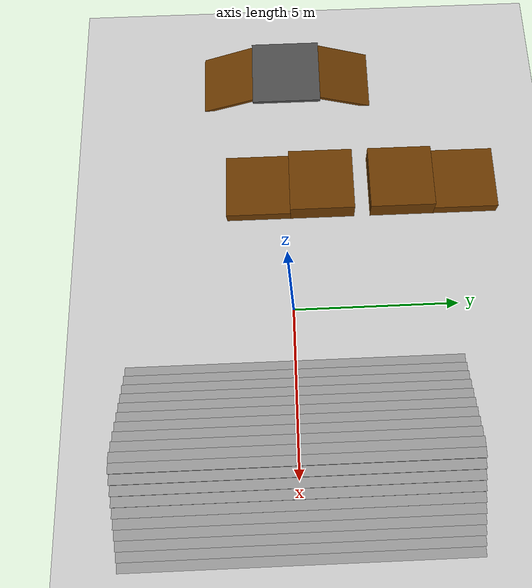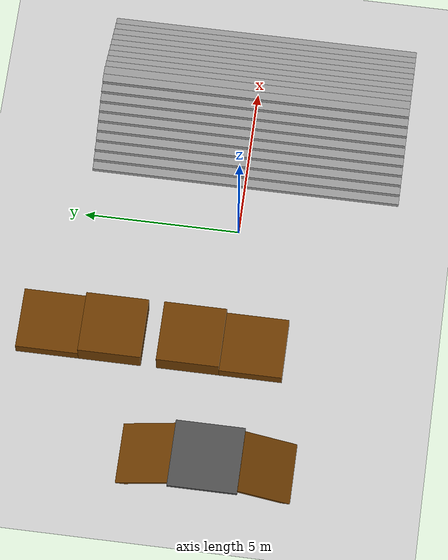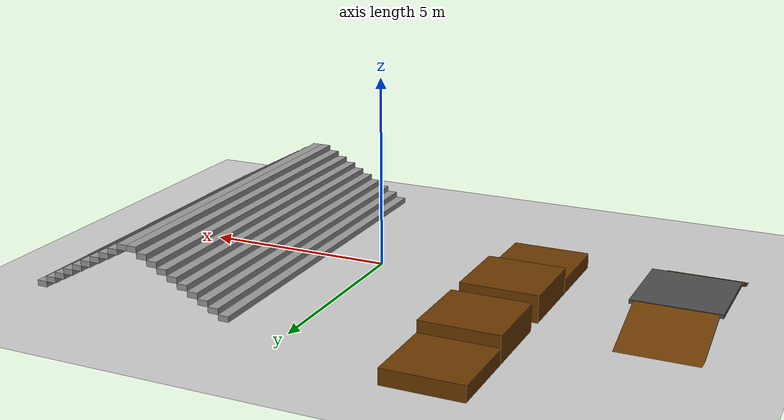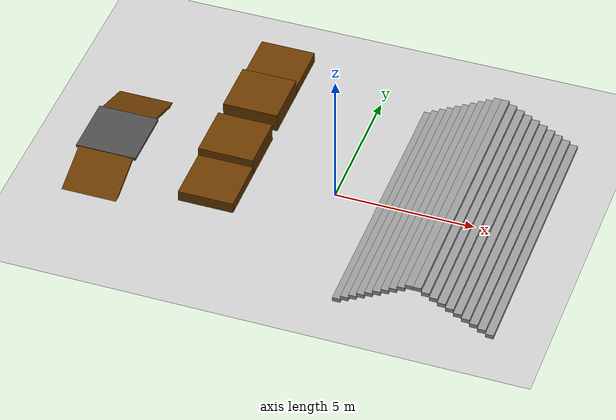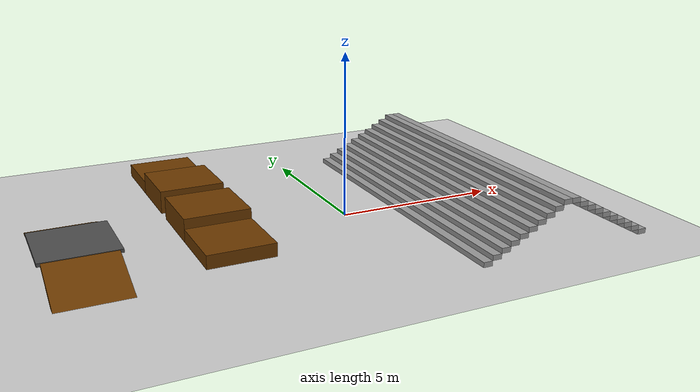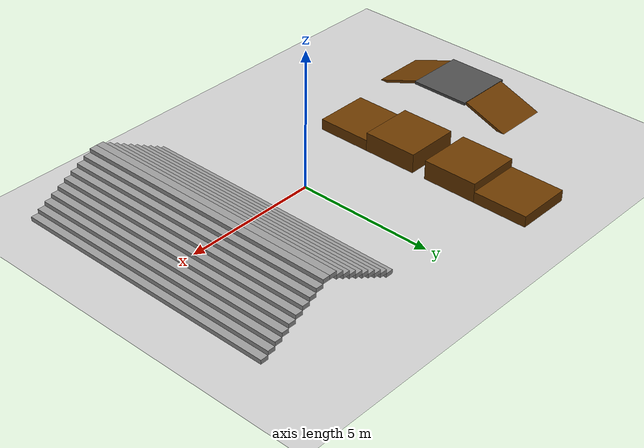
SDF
<?xml version="1.0" ?>
<sdf version="1.5">
    <world name="default">

        <physics type="ode">
            <max_step_size>0.0005</max_step_size>
            <real_time_factor>1</real_time_factor>
            <real_time_update_rate>2000</real_time_update_rate>
            <gravity>0 0 -9.81</gravity>
            <ode>
                <solver>
                    <type>quick</type>
                    <iters>50</iters>
                    <sor>1.3</sor>
                </solver>
                <constraints>
                    <cfm>0.0</cfm>
                    <erp>0.2</erp>
                    <contact_max_correcting_vel>10.0</contact_max_correcting_vel>
                    <contact_surface_layer>0.001</contact_surface_layer>
                </constraints>
            </ode>
        </physics>

        <scene>
        <sky>
            <clouds>
                <speed>12</speed>
            </clouds>
        </sky>
        </scene>
        <!-- A global light source -->
        <include>
            <uri>model://sun</uri>
        </include>
        <!-- A ground plane -->
        <include>
            <uri>model://ground_plane</uri>
        </include>
        <!-- environment blocks, obstacles or stairs -->
        <model name="static_environment">
        <static>true</static>
            <!-- 上斜坡：从后往前爬 -->
            <link name="slope_up">
            <pose>-8 -2.0 0.2 0.35 0 0</pose>
            <collision name="slope_up_collision">
                <geometry>
                <box>
                    <size>2 2 0.1</size>  <!-- 长 Y方向 / 宽 X方向 -->
                </box>
                </geometry>
                <!-- ✨摩擦加在这里 ✨-->
                <surface>
                <friction>
                    <ode>
                    <mu>1.0</mu>   <!-- 越大越防滑 -->
                    <mu2>1.0</mu2>
                    </ode>
                </friction>
                </surface>
            </collision>
            <visual name="slope_up_visual">
                <geometry>
                <box>
                    <size>2 2 0.1</size>
                </box>
                </geometry>
                <material>
                <diffuse>0.421 0.225 0.0 1.0</diffuse>
                </material>
            </visual>
            </link>

            <!-- 平台 -->
            <link name="platform">
            <pose>-8 0.0 0.55 0 0 0</pose>
            <collision name="platform_collision">
                <geometry>
                <box>
                    <size>2.2 2.2 0.1</size>
                </box>
                </geometry>
            </collision>
            <visual name="platform_visual">
                <geometry>
                <box>
                    <size>2.2 2.2 0.1</size>
                </box>
                </geometry>
                <material>
                <diffuse>0.3 0.3 0.3 1.0</diffuse>
                </material>
            </visual>
            </link>

            <!-- 下斜坡：从平台走下去 -->
            <link name="slope_down">
            <pose>-8 2.0 0.2 -0.35 0 0</pose>  <!-- -30° 反向坡 -->
            <collision name="slope_down_collision">
                <geometry>
                <box>
                    <size>2 2 0.1</size>
                </box>
                </geometry>
            </collision>
            <visual name="slope_down_visual">
                <geometry>
                <box>
                    <size>2 2 0.1</size>
                </box>
                </geometry>
                <material>
                <diffuse>0.421 0.225 0.0 1.0</diffuse>
                </material>
            </visual>
            </link>

            <link name="static_box_0">
                <pose>-4 -1.0 0.2 0 0 0</pose>
                <collision name="static_box_collision">
                    <geometry>
                        <box>
                            <size>2 2 0.4</size>
                        </box>
                    </geometry>
                </collision>
                <visual name="static_box_visual">
                    <geometry>
                        <box>
                            <size>2 2 0.4</size>
                        </box>
                    </geometry>
                    <material>
                        <ambient>0.2 0.2 0.2 1.0</ambient>
                        <diffuse>.421 0.225 0.0 1.0</diffuse>
                    </material>
                </visual>
            </link>
            <link name="static_box_1">
                <pose>-4 1.0 0.35 0 0 0</pose>
                <collision name="static_box_collision">
                    <geometry>
                        <box>
                            <size>2 2 0.7</size>
                        </box>
                    </geometry>
                </collision>
                <visual name="static_box_visual">
                    <geometry>
                        <box>
                            <size>2 2 0.7</size>
                        </box>
                    </geometry>
                    <material>
                        <ambient>0.2 0.2 0.2 1.0</ambient>
                        <diffuse>.421 0.225 0.0 1.0</diffuse>
                    </material>
                </visual>
            </link>
            <link name="static_box_2">
                <pose>-4 3.5 0.35 0 0 0</pose>
                <collision name="static_box_collision_1">
                    <geometry>
                        <box>
                            <size>2 2 0.7</size>
                        </box>
                    </geometry>
                </collision>
                <visual name="static_box_visual_1">
                    <geometry>
                        <box>
                            <size>2 2 0.7</size>
                        </box>
                    </geometry>
                    <material>
                        <ambient>0.2 0.2 0.2 1.0</ambient>
                        <diffuse>.421 0.225 0.0 1.0</diffuse>
                    </material>
                </visual>
            </link>
            <link name="static_box_3">
                <pose>-4 5.5 0.2 0 0 0</pose>
                <collision name="static_box_collision_1">
                    <geometry>
                        <box>
                            <size>2 2 0.4</size>
                        </box>
                    </geometry>
                </collision>
                <visual name="static_box_visual_1">
                    <geometry>
                        <box>
                            <size>2 2 0.4</size>
                        </box>
                    </geometry>
                    <material>
                        <ambient>0.2 0.2 0.2 1.0</ambient>
                        <diffuse>.421 0.225 0.0 1.0</diffuse>
                    </material>
                </visual>
            </link>

            <link name='Stairs'>
                <pose>3 0 0 0 0 0</pose>
                <scale>1 1 1</scale>
                <visual name='Stairs_Visual_0'>
                    <pose>-1.26 -0 0.075 0 -0 1.5708</pose>
                    <geometry>
                    <box>
                        <size>10 0.28 0.15</size>
                    </box>
                    </geometry>
                    <material>
                    <script>
                        <uri>file://media/materials/scripts/gazebo.material</uri>
                        <name>Gazebo/Grey</name>
                    </script>
                    <ambient>1 1 1 1</ambient>
                    </material>
                    <meta>
                    <layer>0</layer>
                    </meta>
                </visual>
                <collision name='Stairs_Collision_0'>
                    <geometry>
                    <box>
                        <size>10 0.28 0.15</size>
                    </box>
                    </geometry>
                    <pose>-1.26 -0 0.075 0 -0 1.5708</pose>
                </collision>
                <visual name='Stairs_Visual_1'>
                    <pose>-0.98 -0 0.225 0 -0 1.5708</pose>
                    <geometry>
                    <box>
                        <size>10 0.28 0.15</size>
                    </box>
                    </geometry>
                    <material>
                    <script>
                        <uri>file://media/materials/scripts/gazebo.material</uri>
                        <name>Gazebo/Grey</name>
                    </script>
                    <ambient>1 1 1 1</ambient>
                    </material>
                    <meta>
                    <layer>0</layer>
                    </meta>
                </visual>
                <collision name='Stairs_Collision_1'>
                    <geometry>
                    <box>
                        <size>10 0.28 0.15</size>
                    </box>
                    </geometry>
                    <pose>-0.98 -0 0.225 0 -0 1.5708</pose>
                </collision>
                <visual name='Stairs_Visual_2'>
                    <pose>-0.7 -0 0.375 0 -0 1.5708</pose>
                    <geometry>
                    <box>
                        <size>10 0.28 0.15</size>
                    </box>
                    </geometry>
                    <material>
                    <script>
                        <uri>file://media/materials/scripts/gazebo.material</uri>
                        <name>Gazebo/Grey</name>
                    </script>
                    <ambient>1 1 1 1</ambient>
                    </material>
                    <meta>
                    <layer>0</layer>
                    </meta>
                </visual>
                <collision name='Stairs_Collision_2'>
                    <geometry>
                    <box>
                        <size>10 0.28 0.15</size>
                    </box>
                    </geometry>
                    <pose>-0.7 -0 0.375 0 -0 1.5708</pose>
                </collision>
                <visual name='Stairs_Visual_3'>
                    <pose>-0.42 -0 0.525 0 -0 1.5708</pose>
                    <geometry>
                    <box>
                        <size>10 0.28 0.15</size>
                    </box>
                    </geometry>
                    <material>
                    <script>
                        <uri>file://media/materials/scripts/gazebo.material</uri>
                        <name>Gazebo/Grey</name>
                    </script>
                    <ambient>1 1 1 1</ambient>
                    </material>
                    <meta>
                    <layer>0</layer>
                    </meta>
                </visual>
                <collision name='Stairs_Collision_3'>
                    <geometry>
                    <box>
                        <size>10 0.28 0.15</size>
                    </box>
                    </geometry>
                    <pose>-0.42 -0 0.525 0 -0 1.5708</pose>
                </collision>
                <visual name='Stairs_Visual_4'>
                    <pose>-0.14 -0 0.675 0 -0 1.5708</pose>
                    <geometry>
                    <box>
                        <size>10 0.28 0.15</size>
                    </box>
                    </geometry>
                    <material>
                    <script>
                        <uri>file://media/materials/scripts/gazebo.material</uri>
                        <name>Gazebo/Grey</name>
                    </script>
                    <ambient>1 1 1 1</ambient>
                    </material>
                    <meta>
                    <layer>0</layer>
                    </meta>
                </visual>
                <collision name='Stairs_Collision_4'>
                    <geometry>
                    <box>
                        <size>10 0.28 0.15</size>
                    </box>
                    </geometry>
                    <pose>-0.14 -0 0.675 0 -0 1.5708</pose>
                </collision>
                <visual name='Stairs_Visual_5'>
                    <pose>0.14 0 0.825 0 -0 1.5708</pose>
                    <geometry>
                    <box>
                        <size>10 0.28 0.15</size>
                    </box>
                    </geometry>
                    <material>
                    <script>
                        <uri>file://media/materials/scripts/gazebo.material</uri>
                        <name>Gazebo/Grey</name>
                    </script>
                    <ambient>1 1 1 1</ambient>
                    </material>
                    <meta>
                    <layer>0</layer>
                    </meta>
                </visual>
                <collision name='Stairs_Collision_5'>
                    <geometry>
                    <box>
                        <size>10 0.28 0.15</size>
                    </box>
                    </geometry>
                    <pose>0.14 0 0.825 0 -0 1.5708</pose>
                </collision>
                <visual name='Stairs_Visual_6'>
                    <pose>0.42 0 0.975 0 -0 1.5708</pose>
                    <geometry>
                    <box>
                        <size>10 0.28 0.15</size>
                    </box>
                    </geometry>
                    <material>
                    <script>
                        <uri>file://media/materials/scripts/gazebo.material</uri>
                        <name>Gazebo/Grey</name>
                    </script>
                    <ambient>1 1 1 1</ambient>
                    </material>
                    <meta>
                    <layer>0</layer>
                    </meta>
                </visual>
                <collision name='Stairs_Collision_6'>
                    <geometry>
                    <box>
                        <size>10 0.28 0.15</size>
                    </box>
                    </geometry>
                    <pose>0.42 0 0.975 0 -0 1.5708</pose>
                </collision>
                <visual name='Stairs_Visual_7'>
                    <pose>0.7 0 1.125 0 -0 1.5708</pose>
                    <geometry>
                    <box>
                        <size>10 0.28 0.15</size>
                    </box>
                    </geometry>
                    <material>
                    <script>
                        <uri>file://media/materials/scripts/gazebo.material</uri>
                        <name>Gazebo/Grey</name>
                    </script>
                    <ambient>1 1 1 1</ambient>
                    </material>
                    <meta>
                    <layer>0</layer>
                    </meta>
                </visual>
                <collision name='Stairs_Collision_7'>
                    <geometry>
                    <box>
                        <size>10 0.28 0.15</size>
                    </box>
                    </geometry>
                    <pose>0.7 0 1.125 0 -0 1.5708</pose>
                </collision>
                <visual name='Stairs_Visual_8'>
                    <pose>0.98 0 1.275 0 -0 1.5708</pose>
                    <geometry>
                    <box>
                        <size>10 0.28 0.15</size>
                    </box>
                    </geometry>
                    <material>
                    <script>
                        <uri>file://media/materials/scripts/gazebo.material</uri>
                        <name>Gazebo/Grey</name>
                    </script>
                    <ambient>1 1 1 1</ambient>
                    </material>
                    <meta>
                    <layer>0</layer>
                    </meta>
                </visual>
                <collision name='Stairs_Collision_8'>
                    <geometry>
                    <box>
                        <size>10 0.28 0.15</size>
                    </box>
                    </geometry>
                    <pose>0.98 0 1.275 0 -0 1.5708</pose>
                </collision>
                <visual name='Stairs_Visual_9'>
                    <pose>1.26 0 1.425 0 -0 1.5708</pose>
                    <geometry>
                    <box>
                        <size>10 0.28 0.15</size>
                    </box>
                    </geometry>
                    <material>
                    <script>
                        <uri>file://media/materials/scripts/gazebo.material</uri>
                        <name>Gazebo/Grey</name>
                    </script>
                    <ambient>1 1 1 1</ambient>
                    </material>
                    <meta>
                    <layer>0</layer>
                    </meta>
                </visual>
                <collision name='Stairs_Collision_9'>
                    <geometry>
                    <box>
                        <size>10 0.28 0.15</size>
                    </box>
                    </geometry>
                    <pose>1.26 0 1.425 0 -0 1.5708</pose>
                </collision>
                <visual name='Stairs_Visual_10'>
                    <pose>1.54 0 1.425 0 -0 1.5708</pose>
                    <geometry>
                    <box>
                        <size>10 0.28 0.15</size>
                    </box>
                    </geometry>
                    <material>
                    <script>
                        <uri>file://media/materials/scripts/gazebo.material</uri>
                        <name>Gazebo/Grey</name>
                    </script>
                    <ambient>1 1 1 1</ambient>
                    </material>
                    <meta>
                    <layer>0</layer>
                    </meta>
                </visual>
                <collision name='Stairs_Collision_10'>
                    <geometry>
                    <box>
                        <size>10 0.28 0.15</size>
                    </box>
                    </geometry>
                    <pose>1.54 0 1.425 0 -0 1.5708</pose>
                </collision>
                <visual name='Stairs_Visual_11'>
                    <pose>1.82 0 1.275 0 -0 1.5708</pose>
                    <geometry>
                    <box>
                        <size>10 0.28 0.15</size>
                    </box>
                    </geometry>
                    <material>
                    <script>
                        <uri>file://media/materials/scripts/gazebo.material</uri>
                        <name>Gazebo/Grey</name>
                    </script>
                    <ambient>1 1 1 1</ambient>
                    </material>
                    <meta>
                    <layer>0</layer>
                    </meta>
                </visual>
                <collision name='Stairs_Collision_11'>
                    <geometry>
                    <box>
                        <size>10 0.28 0.15</size>
                    </box>
                    </geometry>
                    <pose>1.82 0 1.275 0 -0 1.5708</pose>
                </collision>
                <visual name='Stairs_Visual_12'>
                    <pose>2.1 0 1.125 0 -0 1.5708</pose>
                    <geometry>
                    <box>
                        <size>10 0.28 0.15</size>
                    </box>
                    </geometry>
                    <material>
                    <script>
                        <uri>file://media/materials/scripts/gazebo.material</uri>
                        <name>Gazebo/Grey</name>
                    </script>
                    <ambient>1 1 1 1</ambient>
                    </material>
                    <meta>
                    <layer>0</layer>
                    </meta>
                </visual>
                <collision name='Stairs_Collision_12'>
                    <geometry>
                    <box>
                        <size>10 0.28 0.15</size>
                    </box>
                    </geometry>
                    <pose>2.1 0 1.125 0 -0 1.5708</pose>
                </collision>
                <visual name='Stairs_Visual_13'>
                    <pose>2.38 0 0.975 0 -0 1.5708</pose>
                    <geometry>
                    <box>
                        <size>10 0.28 0.15</size>
                    </box>
                    </geometry>
                    <material>
                    <script>
                        <uri>file://media/materials/scripts/gazebo.material</uri>
                        <name>Gazebo/Grey</name>
                    </script>
                    <ambient>1 1 1 1</ambient>
                    </material>
                    <meta>
                    <layer>0</layer>
                    </meta>
                </visual>
                <collision name='Stairs_Collision_13'>
                    <geometry>
                    <box>
                        <size>10 0.28 0.15</size>
                    </box>
                    </geometry>
                    <pose>2.38 0 0.975 0 -0 1.5708</pose>
                </collision>
                <visual name='Stairs_Visual_14'>
                    <pose>2.66 0 0.825 0 -0 1.5708</pose>
                    <geometry>
                    <box>
                        <size>10 0.28 0.15</size>
                    </box>
                    </geometry>
                    <material>
                    <script>
                        <uri>file://media/materials/scripts/gazebo.material</uri>
                        <name>Gazebo/Grey</name>
                    </script>
                    <ambient>1 1 1 1</ambient>
                    </material>
                    <meta>
                    <layer>0</layer>
                    </meta>
                </visual>
                <collision name='Stairs_Collision_14'>
                    <geometry>
                    <box>
                        <size>10 0.28 0.15</size>
                    </box>
                    </geometry>
                    <pose>2.66 0 0.825 0 -0 1.5708</pose>
                </collision>
                <visual name='Stairs_Visual_15'>
                    <pose>2.94 -0 0.675 0 -0 1.5708</pose>
                    <geometry>
                    <box>
                        <size>10 0.28 0.15</size>
                    </box>
                    </geometry>
                    <material>
                    <script>
                        <uri>file://media/materials/scripts/gazebo.material</uri>
                        <name>Gazebo/Grey</name>
                    </script>
                    <ambient>1 1 1 1</ambient>
                    </material>
                    <meta>
                    <layer>0</layer>
                    </meta>
                </visual>
                <collision name='Stairs_Collision_15'>
                    <geometry>
                    <box>
                        <size>10 0.28 0.15</size>
                    </box>
                    </geometry>
                    <pose>2.94 -0 0.675 0 -0 1.5708</pose>
                </collision>
                <visual name='Stairs_Visual_16'>
                    <pose>3.22 -0 0.525 0 -0 1.5708</pose>
                    <geometry>
                    <box>
                        <size>10 0.28 0.15</size>
                    </box>
                    </geometry>
                    <material>
                    <script>
                        <uri>file://media/materials/scripts/gazebo.material</uri>
                        <name>Gazebo/Grey</name>
                    </script>
                    <ambient>1 1 1 1</ambient>
                    </material>
                    <meta>
                    <layer>0</layer>
                    </meta>
                </visual>
                <collision name='Stairs_Collision_16'>
                    <geometry>
                    <box>
                        <size>10 0.28 0.15</size>
                    </box>
                    </geometry>
                    <pose>3.22 -0 0.525 0 -0 1.5708</pose>
                </collision>
                <visual name='Stairs_Visual_17'>
                    <pose>3.5 -0 0.375 0 -0 1.5708</pose>
                    <geometry>
                    <box>
                        <size>10 0.28 0.15</size>
                    </box>
                    </geometry>
                    <material>
                    <script>
                        <uri>file://media/materials/scripts/gazebo.material</uri>
                        <name>Gazebo/Grey</name>
                    </script>
                    <ambient>1 1 1 1</ambient>
                    </material>
                    <meta>
                    <layer>0</layer>
                    </meta>
                </visual>
                <collision name='Stairs_Collision_17'>
                    <geometry>
                    <box>
                        <size>10 0.28 0.15</size>
                    </box>
                    </geometry>
                    <pose>3.5 -0 0.375 0 -0 1.5708</pose>
                </collision>
                <visual name='Stairs_Visual_18'>
                    <pose>3.78 -0 0.225 0 -0 1.5708</pose>
                    <geometry>
                    <box>
                        <size>10 0.28 0.15</size>
                    </box>
                    </geometry>
                    <material>
                    <script>
                        <uri>file://media/materials/scripts/gazebo.material</uri>
                        <name>Gazebo/Grey</name>
                    </script>
                    <ambient>1 1 1 1</ambient>
                    </material>
                    <meta>
                    <layer>0</layer>
                    </meta>
                </visual>
                <collision name='Stairs_Collision_18'>
                    <geometry>
                    <box>
                        <size>10 0.28 0.15</size>
                    </box>
                    </geometry>
                    <pose>3.78 -0 0.225 0 -0 1.5708</pose>
                </collision>
                <visual name='Stairs_Visual_19'>
                    <pose>4.06 -0 0.075 0 -0 1.5708</pose>
                    <geometry>
                    <box>
                        <size>10 0.28 0.15</size>
                    </box>
                    </geometry>
                    <material>
                    <script>
                        <uri>file://media/materials/scripts/gazebo.material</uri>
                        <name>Gazebo/Grey</name>
                    </script>
                    <ambient>1 1 1 1</ambient>
                    </material>
                    <meta>
                    <layer>0</layer>
                    </meta>
                </visual>
                <collision name='Stairs_Collision_19'>
                    <geometry>
                    <box>
                        <size>10 0.28 0.15</size>
                    </box>
                    </geometry>
                    <pose>4.06 -0 0.075 0 -0 1.5708</pose>
                </collision>
            </link>
        </model>

    </world>
</sdf>
